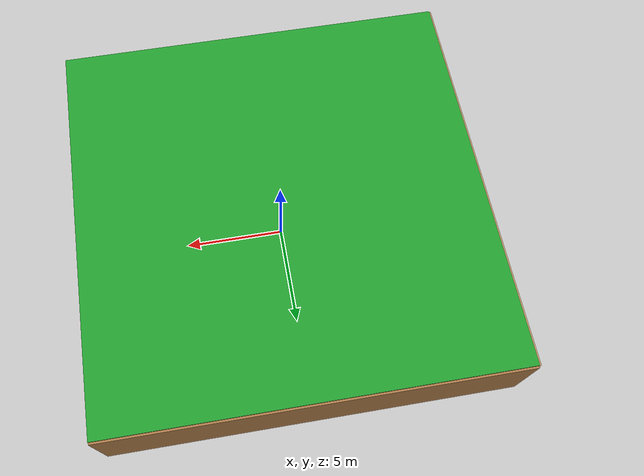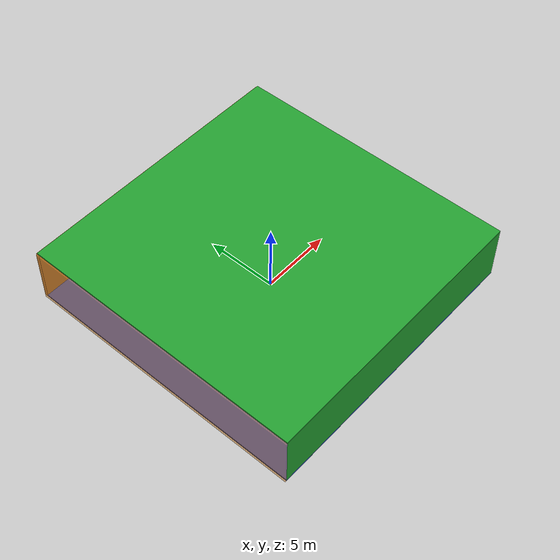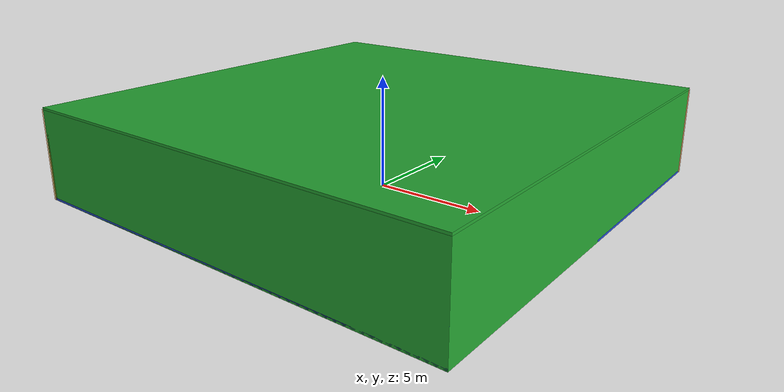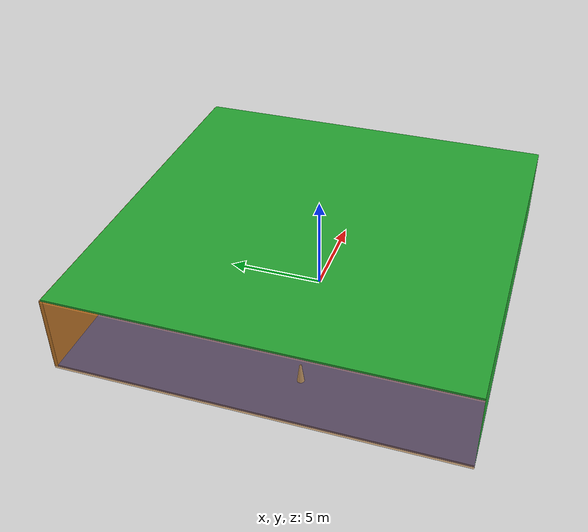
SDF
<sdf version="1.4">
 <world name="default">
  <physics type="ode">
   <max_step_size>0.001</max_step_size>
   <real_time_factor>1</real_time_factor>
   <real_time_update_rate>1000</real_time_update_rate>
   <gravity>0 0 -9.8</gravity>
  </physics>
  <scene><ambient>0.4 0.4 0.4 1</ambient><background>0.7 0.7 0.7 1</background><shadows>1</shadows></scene>
  <model name="Surrounding">
   <static>1</static>
   <link name="Ceiling">
    <collision name="Ceiling_Collision"><geometry><box><size>20 20 0.1</size></box></geometry></collision>
    <visual name="Ceiling_Visual">
     <geometry><box><size>20 20 0.1</size></box></geometry>
     <material>
      <script><uri>file://media/materials/scripts/gazebo.material</uri><name>Gazebo/GreenGlow</name></script>
     </material>
    </visual>
    <pose>0 0 4.05 0 0 0</pose>
   </link>
   <link name="Wall_South">
    <collision name="Wall_South_Collision">
     <geometry><box><size>20 0 4</size></box></geometry>
     <pose>0 0 2 0 -0 0</pose>
    </collision>
    <visual name="Wall_South_Visual">
     <pose>0 0 2 0 -0 0</pose>
     <geometry><box><size>20 0 4</size></box></geometry>
     <material>
      <script><uri>file://media/materials/scripts/gazebo.material</uri><name>Gazebo/GreenGlow</name></script>
     </material>
    </visual>
    <velocity_decay><linear>0</linear><angular>0</angular></velocity_decay>
    <pose>0 -10 0 0 -0 0</pose>
   </link>
   <link name="Wall_East">
    <collision name="Wall_21_Collision">
     <geometry><box><size>20 0 4</size></box></geometry>
     <pose>0 0 2 0 -0 0</pose>
    </collision>
    <visual name="Wall_21_Visual">
     <pose>0 0 2 0 -0 0</pose>
     <geometry><box><size>20 0 4</size></box></geometry>
     <material>
      <script><uri>file://media/materials/scripts/gazebo.material</uri><name>Gazebo/Green</name></script>
     </material>
    </visual>
    <velocity_decay><linear>0</linear><angular>0</angular></velocity_decay>
    <pose>10 0 0 0 -0 1.5708</pose>
   </link>
   <link name="Wall_North">
    <collision name="Wall_22_Collision">
     <geometry><box><size>20 0.2 4</size></box></geometry>
     <pose>0 0 2 0 -0 0</pose>
    </collision>
    <visual name="Wall_22_Visual">
     <pose>0 0 2 0 -0 0</pose>
     <geometry><box><size>20 0.2 4</size></box></geometry>
     <material>
      <script><uri>file://media/materials/scripts/gazebo.material</uri><name>Gazebo/WoodPallet</name></script>
     </material>
    </visual>
    <velocity_decay><linear>0</linear><angular>0</angular></velocity_decay>
    <pose>0 10 0 0 -0 0</pose>
   </link>
   <link name="Wall_West">
    <collision name="Wall_23_Collision">
     <geometry><box><size>20 0.2 4</size></box></geometry>
     <pose>0 0 2 0 -0 0</pose>
    </collision>
    <visual name="Wall_23_Visual">
     <pose>0 0 2 0 -0 0</pose>
     <geometry><box><size>20 0.2 4</size></box></geometry>
     <material>
      <script>
       <uri>file://media/materials/scripts/gazebo.material</uri>
       <name>Gazebo/OrangeTransparent</name>
      </script>
     </material>
    </visual>
    <velocity_decay><linear>0</linear><angular>0</angular></velocity_decay>
    <pose>-10 0 0 0 0 -1.5708</pose>
   </link>
   <link name="Ground_link">
    <collision name="collision">
     <pose>0 0 .05 0 -0 0</pose>
     <geometry><box><size>20 20 0.1</size></box></geometry>
    </collision>
    <visual name="visual">
     <pose>0 0 .05 0 -0 0</pose>
     <geometry><box><size>20 20 0.1</size></box></geometry>
     <material>
      <script><uri>file://media/materials/scripts/gazebo.material</uri><name>Gazebo/BlueGlow</name></script>
     </material>
    </visual>
   </link>
   <static>1</static>
  </model>
  <spherical_coordinates>
   <surface_model>EARTH_WGS84</surface_model>
   <latitude_deg>0</latitude_deg>
   <longitude_deg>0</longitude_deg>
   <elevation>0</elevation>
   <heading_deg>0</heading_deg>
  </spherical_coordinates>
  <light name="lightball_0" type="diffuse">
   <diffuse>0.8 0.8 0.8 1</diffuse>
   <specular>0.2 0.2 0.2 1</specular>
   <attenuation>
    <range>100</range>
    <constant>0.7</constant>
    <linear>0.01</linear>
    <quadratic>0.001</quadratic>
   </attenuation>
   <direction>-0.5 0.1 -0.9</direction>
   <pose>-8.32213403455 -4.8220355536 2.79968479317 0 0 0</pose>
  </light>
  <light name="lightball_1" type="diffuse">
   <diffuse>0.8 0.8 0.8 1</diffuse>
   <specular>0.2 0.2 0.2 1</specular>
   <attenuation>
    <range>100</range>
    <constant>0.7</constant>
    <linear>0.01</linear>
    <quadratic>0.001</quadratic>
   </attenuation>
   <direction>-0.5 0.1 -0.9</direction>
   <pose>-0.686458228581 0.311228826404 2.23525244966 0 0 0</pose>
  </light>
  <light name="lightball_2" type="diffuse">
   <diffuse>0.8 0.8 0.8 1</diffuse>
   <specular>0.2 0.2 0.2 1</specular>
   <attenuation>
    <range>100</range>
    <constant>0.7</constant>
    <linear>0.01</linear>
    <quadratic>0.001</quadratic>
   </attenuation>
   <direction>-0.5 0.1 -0.9</direction>
   <pose>3.91157409043 -2.22071395216 1.44579697909 0 0 0</pose>
  </light>
  <light name="lightball_3" type="diffuse">
   <diffuse>0.8 0.8 0.8 1</diffuse>
   <specular>0.2 0.2 0.2 1</specular>
   <attenuation>
    <range>100</range>
    <constant>0.7</constant>
    <linear>0.01</linear>
    <quadratic>0.001</quadratic>
   </attenuation>
   <direction>-0.5 0.1 -0.9</direction>
   <pose>5.92663084952 6.33458972938 3.0439249535 0 0 0</pose>
  </light>
  <light name="lightball_4" type="diffuse">
   <diffuse>0.8 0.8 0.8 1</diffuse>
   <specular>0.2 0.2 0.2 1</specular>
   <attenuation>
    <range>100</range>
    <constant>0.7</constant>
    <linear>0.01</linear>
    <quadratic>0.001</quadratic>
   </attenuation>
   <direction>-0.5 0.1 -0.9</direction>
   <pose>-5.93517853206 -4.79732783835 1.24978981766 0 0 0</pose>
  </light>
  <light name="lightball_5" type="diffuse">
   <diffuse>0.8 0.8 0.8 1</diffuse>
   <specular>0.2 0.2 0.2 1</specular>
   <attenuation>
    <range>100</range>
    <constant>0.7</constant>
    <linear>0.01</linear>
    <quadratic>0.001</quadratic>
   </attenuation>
   <direction>-0.5 0.1 -0.9</direction>
   <pose>-2.6778534966 -4.27614549246 1.01711043704 0 0 0</pose>
  </light>
  <include>
   <uri>model://construction_cone</uri>
   <pose>-7.46707263025 -1.45257706794 0 0 0 0.669388263647</pose>
  </include>
  <include><uri>model://cabinet</uri><pose>-1.73876643132 -4.54853576212 0 0 0 1.44371200578</pose></include>
  <include>
   <uri>model://textured_shapes</uri>
   <pose>1.0478992869 2.57992746299 0 0 0 2.0818035251</pose>
  </include>
  <include>
   <uri>model://textured_shapes</uri>
   <pose>4.80414540742 2.5628587606 0 0 0 2.40867205779</pose>
  </include>
  <include>
   <uri>model://robocup_3Dsim_goal</uri>
   <pose>5.05663247864 6.67052151864 0 0 0 0.18898615093</pose>
  </include>
 </world>
</sdf>

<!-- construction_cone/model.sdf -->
<sdf version="1.5">
  <model name="Construction Cone">
    <link name="link">
      <collision name="collision">
        <geometry>
          <mesh>
            <scale>10 10 10</scale>
            <uri>file://isr-testbed/construction_cone/meshes/construction_cone.dae</uri>
          </mesh>
        </geometry>
      </collision>
      <visual name="visual">
        <geometry>
          <mesh>
            <scale>10 10 10</scale>
            <uri>file://isr-testbed/construction_cone/meshes/construction_cone.dae</uri>
          </mesh>
        </geometry>
      </visual>
    </link>
  </model>
</sdf>

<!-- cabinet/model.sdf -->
<sdf version="1.5">
  <model name="cabinet">
    <static>true</static>
    <link name="cabinet_bottom_plate">
      <inertial>
        <pose>0 0 -1 0 0 0</pose>
        <inertia>
          <ixx>2.050000</ixx>
          <ixy>0</ixy>
          <ixz>0</ixz>
          <iyy>2.050000</iyy>
          <iyz>0</iyz>
          <izz>2.050000</izz>
        </inertia>
        <mass>25.000000</mass>
      </inertial>
      <collision name="cabinet_bottom_plate_geom">
        <pose>0 0 0.010000 0 0 0</pose>
        <geometry>
          <box>
            <size>0.450000 0.450000 0.020000</size>
          </box>
        </geometry>
      </collision>
      <visual name="cabinet_bottom_plate_geom_visual">
        <pose>0 0 0.010000 0 0 0</pose>
        <geometry>
          <box>
            <size>0.450000 0.450000 0.020000</size>
          </box>
        </geometry>
        <material>
          <script>
            <uri>model://media/materials/scripts/gazebo.material</uri>
            <name>Gazebo/Wood</name>
          </script>
        </material>
      </visual>
      <collision name="cabinet_bottom_plate_geom_cabinet_back_plate">
        <pose>0.235000 0 0.510000 0 0 0</pose>
        <geometry>
          <box>
            <size>0.020000 0.450000 1.020000</size>
          </box>
        </geometry>
      </collision>
      <visual name="cabinet_bottom_plate_geom_cabinet_back_plate_visual">
        <pose>0.235000 0 0.510000 0 0 0</pose>
        <geometry>
          <box>
            <size>0.020000 0.450000 1.020000</size>
          </box>
        </geometry>
        <material>
          <script>
            <uri>model://media/materials/scripts/gazebo.material</uri>
            <name>Gazebo/Wood</name>
          </script>
        </material>
      </visual>
      <collision name="cabinet_bottom_plate_geom_cabinet_left_plate">
        <pose>0 0.235000 0.510000 0 0 0</pose>
        <geometry>
          <box>
            <size>0.450000 0.020000 1.020000</size>
          </box>
        </geometry>
      </collision>
      <visual name="cabinet_bottom_plate_geom_cabinet_left_plate_visual">
        <pose>0 0.235000 0.510000 0 0 0</pose>
        <geometry>
          <box>
            <size>0.450000 0.020000 1.020000</size>
          </box>
        </geometry>
        <material>
          <script>
            <uri>model://media/materials/scripts/gazebo.material</uri>
            <name>Gazebo/Wood</name>
          </script>
        </material>
      </visual>
      <collision name="cabinet_bottom_plate_geom_cabinet_middle_plate">
        <pose>0 0 0.510000 0 0 0</pose>
        <geometry>
          <box>
            <size>0.450000 0.450000 0.020000</size>
          </box>
        </geometry>
      </collision>
      <visual name="cabinet_bottom_plate_geom_cabinet_middle_plate_visual">
        <pose>0 0 0.510000 0 0 0</pose>
        <geometry>
          <box>
            <size>0.450000 0.450000 0.020000</size>
          </box>
        </geometry>
        <material>
          <script>
            <uri>model://media/materials/scripts/gazebo.material</uri>
            <name>Gazebo/Wood</name>
          </script>
        </material>
      </visual>
      <collision name="cabinet_bottom_plate_geom_cabinet_right_plate">
        <pose>0 -0.235000 0.510000 0 0 0</pose>
        <geometry>
          <box>
            <size>0.450000 0.020000 1.020000</size>
          </box>
        </geometry>
      </collision>
      <visual name="cabinet_bottom_plate_geom_cabinet_right_plate_visual">
        <pose>0 -0.235000 0.510000 0 0 0</pose>
        <geometry>
          <box>
            <size>0.450000 0.020000 1.020000</size>
          </box>
        </geometry>
        <material>
          <script>
            <uri>model://media/materials/scripts/gazebo.material</uri>
            <name>Gazebo/Wood</name>
          </script>
        </material>
      </visual>
      <collision name="cabinet_bottom_plate_geom_cabinet_top_plate">
        <pose>0 0 1.010000 0 0 0</pose>
        <geometry>
          <box>
            <size>0.450000 0.450000 0.020000</size>
          </box>
        </geometry>
      </collision>
      <visual name="cabinet_bottom_plate_geom_cabinet_top_plate_visual">
        <pose>0 0 1.010000 0 0 0</pose>
        <geometry>
          <box>
            <size>0.450000 0.450000 0.020000</size>
          </box>
        </geometry>
        <material>
          <script>
            <uri>model://media/materials/scripts/gazebo.material</uri>
            <name>Gazebo/Wood</name>
          </script>
        </material>
      </visual>
    </link>
  </model>
</sdf>

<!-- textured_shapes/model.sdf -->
<sdf version="1.6">
  <model name="textured_shapes">
    <pose>0 0 0.5 0 0 0</pose>
    <link name="box">
      <pose>0 -1.5 0 0 0 0</pose>
      <collision name="collision">
        <geometry>
          <box>
            <size>1 1 1</size>
          </box>
        </geometry>
      </collision>
      <visual name="visual">
        <geometry>
          <box>
            <size>1 1 1</size>
          </box>
        </geometry>
        <material>
          <script>
            <uri>model://../model_source/models/textured_shapes/materials/scripts</uri>
            <uri>model://../model_source/models/textured_shapes/materials/textures</uri>
            <name>TexturedShape/Squares</name>
          </script>
        </material>
      </visual>
    </link>
    <link name="sphere">
      <collision name="collision">
        <geometry>
          <sphere>
            <radius>0.5</radius>
          </sphere>
        </geometry>
      </collision>
      <visual name="visual">
        <geometry>
          <sphere>
            <radius>0.5</radius>
          </sphere>
        </geometry>
        <material>
          <script>
            <uri>model://../model_source/models/textured_shapes/materials/scripts</uri>
            <uri>model://../model_source/models/textured_shapes/materials/textures</uri>
            <name>TexturedShape/Squares</name>
          </script>
        </material>
      </visual>
    </link>
    <link name="cylinder">
      <pose>0 1.5 0 0 0 0</pose>
      <collision name="collision">
        <geometry>
          <cylinder>
            <radius>0.5</radius>
            <length>1</length>
          </cylinder>
        </geometry>
      </collision>
      <visual name="visual">
        <geometry>
          <cylinder>
            <radius>0.5</radius>
            <length>1</length>
          </cylinder>
        </geometry>
        <material>
          <script>
            <uri>model://../model_source/models/textured_shapes/materials/scripts</uri>
            <uri>model://../model_source/models/textured_shapes/materials/textures</uri>
            <name>TexturedShape/Squares</name>
          </script>
        </material>
      </visual>
    </link>
  </model>
</sdf>

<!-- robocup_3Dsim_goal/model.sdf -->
<sdf version="1.5">
  <model name="robocup_3d_goal">
    <static>true</static>
    <link name="left_post">
      <pose>0 1.05 0.45 0 0 0</pose>
      <collision name="collision">
        <geometry>
          <cylinder>
            <radius>0.05</radius>
            <length>0.9</length>
          </cylinder>
        </geometry>
      </collision>
      <visual name="visual">
        <geometry>
          <cylinder>
            <radius>0.05</radius>
            <length>0.9</length>
          </cylinder>
        </geometry>
        <material>
          <script>
            <uri>file://media/materials/scripts/gazebo.material</uri>
            <name>Gazebo/ZincYellow</name>
          </script>
        </material>
      </visual>
    </link>
    <link name="left_support_horiz_lower">
      <pose>0.30 1.05 0.01 0 0 0</pose>
      <collision name="collision">
        <geometry>
          <box>
            <size>0.50 0.02 0.02</size>
          </box>
        </geometry>
      </collision>
      <visual name="visual">
        <geometry>
          <box>
            <size>0.50 0.02 0.02</size>
          </box>
        </geometry>
        <material>
          <script>
            <uri>file://media/materials/scripts/gazebo.material</uri>
            <name>Gazebo/White</name>
          </script>
        </material>
      </visual>
    </link>
    <link name="left_support_horiz_upper">
      <pose>0.30 1.05 0.79 0 0 0</pose>
      <collision name="collision">
        <geometry>
          <box>
            <size>0.50 0.02 0.02</size>
          </box>
        </geometry>
      </collision>
      <visual name="visual">
        <geometry>
          <box>
            <size>0.50 0.02 0.02</size>
          </box>
        </geometry>
        <material>
          <script>
            <uri>file://media/materials/scripts/gazebo.material</uri>
            <name>Gazebo/White</name>
          </script>
        </material>
      </visual>
    </link>
    <link name="left_support_vertical">
      <pose>0.56 1.05 0.4 0 1.5708 0</pose>
      <collision name="collision">
        <geometry>
          <box>
            <size>0.80 0.02 0.02</size>
          </box>
        </geometry>
      </collision>
      <visual name="visual">
        <geometry>
          <box>
            <size>0.80 0.02 0.02</size>
          </box>
        </geometry>
        <material>
          <script>
            <uri>file://media/materials/scripts/gazebo.material</uri>
            <name>Gazebo/White</name>
          </script>
        </material>
      </visual>
    </link>
    <link name="right_support_horiz_lower">
      <pose>0.30 -1.05 0.01 0 0 0</pose>
      <collision name="collision">
        <geometry>
          <box>
            <size>0.50 0.02 0.02</size>
          </box>
        </geometry>
      </collision>
      <visual name="visual">
        <geometry>
          <box>
            <size>0.50 0.02 0.02</size>
          </box>
        </geometry>
        <material>
          <script>
            <uri>file://media/materials/scripts/gazebo.material</uri>
            <name>Gazebo/White</name>
          </script>
        </material>
      </visual>
    </link>
    <link name="right_support_horiz_upper">
      <pose>0.30 -1.05 0.79 0 0 0</pose>
      <collision name="collision">
        <geometry>
          <box>
            <size>0.50 0.02 0.02</size>
          </box>
        </geometry>
      </collision>
      <visual name="visual">
        <geometry>
          <box>
            <size>0.50 0.02 0.02</size>
          </box>
        </geometry>
        <material>
          <script>
            <uri>file://media/materials/scripts/gazebo.material</uri>
            <name>Gazebo/White</name>
          </script>
        </material>
      </visual>
    </link>
    <link name="right_support_vertical">
      <pose>0.56 -1.05 0.4 0 1.5708 0</pose>
      <collision name="collision">
        <geometry>
          <box>
            <size>0.80 0.02 0.02</size>
          </box>
        </geometry>
      </collision>
      <visual name="visual">
        <geometry>
          <box>
            <size>0.80 0.02 0.02</size>
          </box>
        </geometry>
        <material>
          <script>
            <uri>file://media/materials/scripts/gazebo.material</uri>
            <name>Gazebo/White</name>
          </script>
        </material>
      </visual>
    </link>
    <link name="center_support_horiz_lower">
      <pose>0.56 0 0.01 0 1.5708 0</pose>
      <collision name="collision">
        <geometry>
          <box>
            <size>0.02 2.08 0.02</size>
          </box>
        </geometry>
      </collision>
      <visual name="visual">
        <geometry>
          <box>
            <size>0.02 2.08 0.02</size>
          </box>
        </geometry>
        <material>
          <script>
            <uri>file://media/materials/scripts/gazebo.material</uri>
            <name>Gazebo/White</name>
          </script>
        </material>
      </visual>
    </link>
    <link name="center_support_horiz_upper">
      <pose>0.56 0 0.79 0 1.5708 0</pose>
      <collision name="collision">
        <geometry>
          <box>
            <size>0.02 2.08 0.02</size>
          </box>
        </geometry>
      </collision>
      <visual name="visual">
        <geometry>
          <box>
            <size>0.02 2.08 0.02</size>
          </box>
        </geometry>
        <material>
          <script>
            <uri>file://media/materials/scripts/gazebo.material</uri>
            <name>Gazebo/White</name>
          </script>
        </material>
      </visual>
    </link>
    <link name="right_post">
      <pose>0 -1.05 0.45 0 0 0</pose>
      <collision name="collision">
        <geometry>
          <cylinder>
            <radius>0.05</radius>
            <length>0.9</length>
          </cylinder>
        </geometry>
      </collision>
      <visual name="visual">
        <geometry>
          <cylinder>
            <radius>0.05</radius>
            <length>0.9</length>
          </cylinder>
        </geometry>
        <material>
          <script>
            <uri>file://media/materials/scripts/gazebo.material</uri>
            <name>Gazebo/ZincYellow</name>
          </script>
        </material>
      </visual>
    </link>
    <link name="crossbar">
      <pose>0 0 0.85 1.57 1.57 0</pose>
      <collision name="collision">
        <geometry>
          <cylinder>
            <radius>0.05</radius>
            <length>2.0</length>
          </cylinder>
        </geometry>
      </collision>
      <visual name="visual">
        <geometry>
          <cylinder>
            <radius>0.05</radius>
            <length>2.0</length>
          </cylinder>
        </geometry>
        <material>
          <script>
            <uri>file://media/materials/scripts/gazebo.material</uri>
            <name>Gazebo/ZincYellow</name>
          </script>
        </material>
      </visual>
    </link>
    <link name="center_net">
      <pose>0.56 0 0.40 0 0 0</pose>
      <collision name="collision">
        <geometry>
          <box>
            <size>0.01 2.1 0.80</size>
          </box>
        </geometry>
      </collision>
      <visual name="visual">
        <geometry>
          <box>
            <size>0.01 2.1 0.80</size>
          </box>
        </geometry>
        <material>
          <script>
            <uri>model://../model_source/models/robocup09_spl_field/materials/scripts/</uri>
            <uri>model://../model_source/models/robocup09_spl_field/materials/textures/</uri>
            <name>RoboCup/Net</name>
          </script>
        </material>
      </visual>
    </link>
    <link name="left_net">
      <pose>0.30 1.05 0.40 0 0 0</pose>
      <collision name="collision">
        <geometry>
          <box>
            <size>0.50 0.01 0.76</size>
          </box>
        </geometry>
      </collision>
      <visual name="visual">
        <geometry>
          <box>
            <size>0.50 0.01 0.76</size>
          </box>
        </geometry>
        <material>
          <script>
            <uri>model://../model_source/models/robocup09_spl_field/materials/scripts/</uri>
            <uri>model://../model_source/models/robocup09_spl_field/materials/textures/</uri>
            <name>RoboCup/Net</name>
          </script>
        </material>
      </visual>
    </link>
    <link name="right_net">
      <pose>0.30 -1.05 0.40 0 0 0</pose>
      <collision name="collision">
        <geometry>
          <box>
            <size>0.50 0.01 0.76</size>
          </box>
        </geometry>
      </collision>
      <visual name="visual">
        <geometry>
          <box>
            <size>0.50 0.01 0.76</size>
          </box>
        </geometry>
        <material>
          <script>
            <uri>model://../model_source/models/robocup09_spl_field/materials/scripts/</uri>
            <uri>model://../model_source/models/robocup09_spl_field/materials/textures/</uri>
            <name>RoboCup/Net</name>
          </script>
        </material>
      </visual>
    </link>
  </model>
</sdf>
